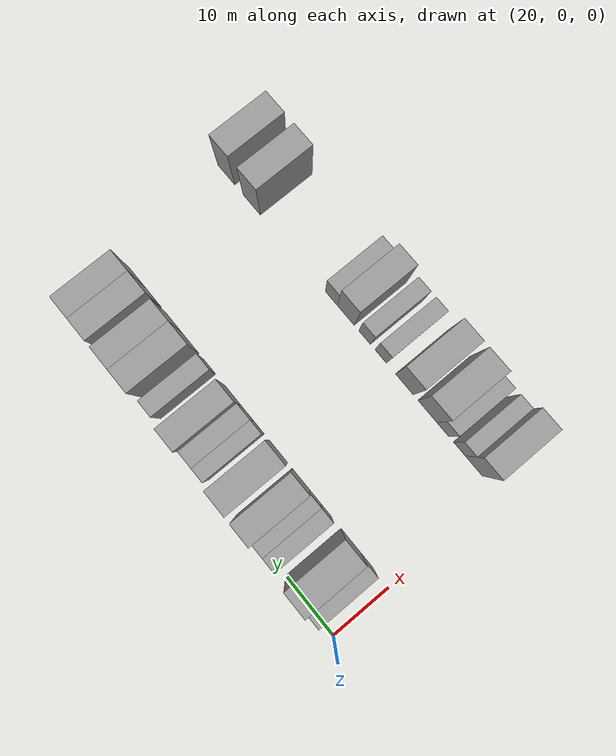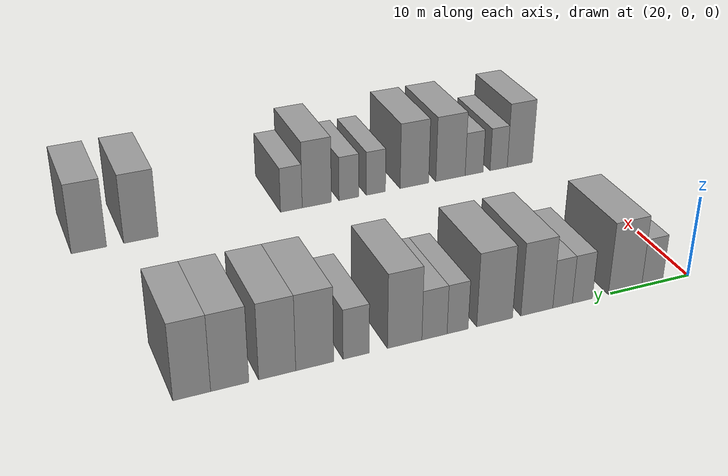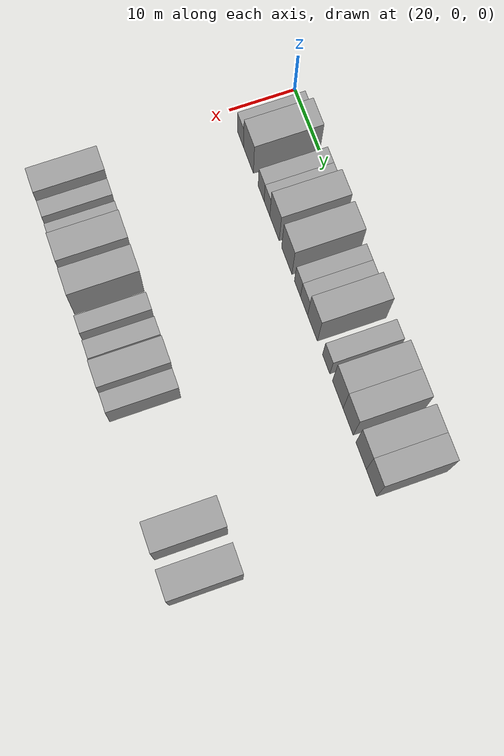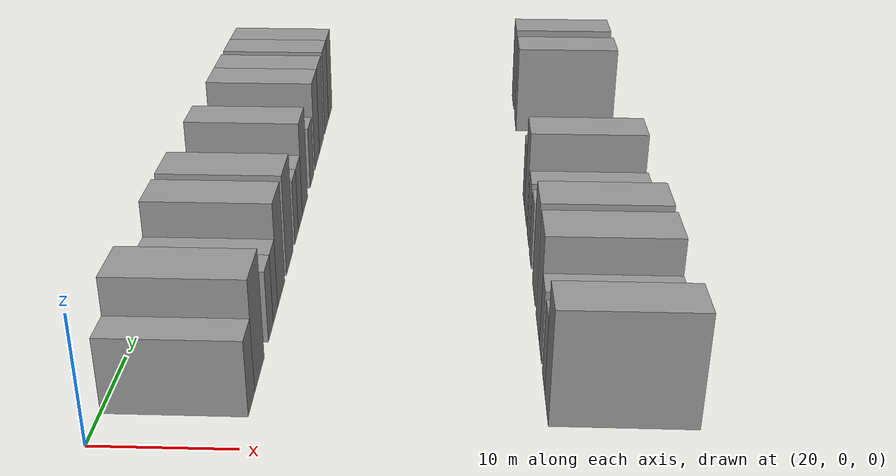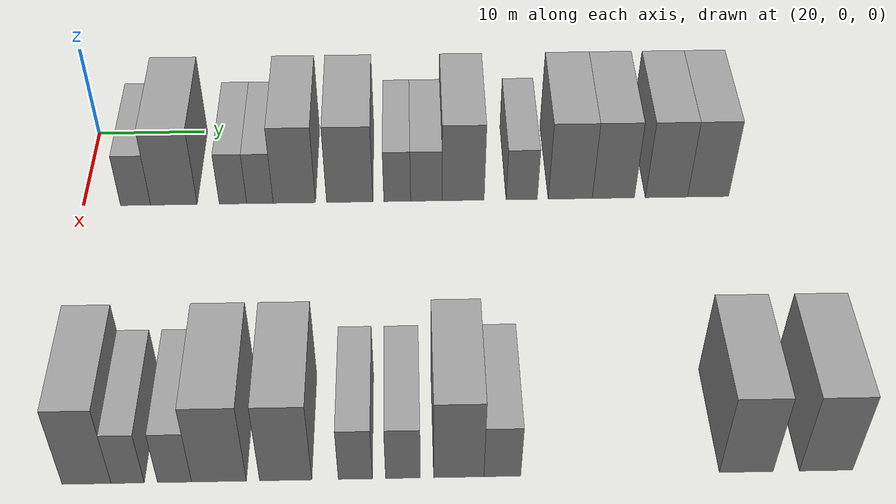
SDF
<sdf version="1.6">
 <world name="default">
  <model name="building_58">
   <static>1</static>
   <pose>25.0000 4.7348 0 0.000000 0.000000 0.000000</pose>
   <link name="link">
    <pose>0 0 3.00 0 0 0</pose>
    <collision name="collision"><geometry><box><size>10.0000 2.7110 6.0000</size></box></geometry></collision>
    <visual name="visual">
     <cast_shadows>0</cast_shadows>
     <geometry><box><size>10.0000 2.7110 6.0000</size></box></geometry>
     <material>
      <script>
       <uri>model://grey_wall/materials/scripts</uri>
       <uri>model://grey_wall/materials/textures</uri>
       <name>vrc/grey_wall</name>
      </script>
     </material>
    </visual>
   </link>
  </model>
  <model name="building_59">
   <static>1</static>
   <pose>25.0000 8.2013 0 0.000000 0.000000 0.000000</pose>
   <link name="link">
    <pose>0 0 4.50 0 0 0</pose>
    <collision name="collision"><geometry><box><size>10.0000 4.2220 9.0000</size></box></geometry></collision>
    <visual name="visual">
     <cast_shadows>0</cast_shadows>
     <geometry><box><size>10.0000 4.2220 9.0000</size></box></geometry>
     <material>
      <script>
       <uri>model://grey_wall/materials/scripts</uri>
       <uri>model://grey_wall/materials/textures</uri>
       <name>vrc/grey_wall</name>
      </script>
     </material>
    </visual>
   </link>
  </model>
  <model name="building_60">
   <static>1</static>
   <pose>25.0000 13.5528 0 0.000000 0.000000 0.000000</pose>
   <link name="link">
    <pose>0 0 3.00 0 0 0</pose>
    <collision name="collision"><geometry><box><size>10.0000 2.4810 6.0000</size></box></geometry></collision>
    <visual name="visual">
     <cast_shadows>0</cast_shadows>
     <geometry><box><size>10.0000 2.4810 6.0000</size></box></geometry>
     <material>
      <script>
       <uri>model://grey_wall/materials/scripts</uri>
       <uri>model://grey_wall/materials/textures</uri>
       <name>vrc/grey_wall</name>
      </script>
     </material>
    </visual>
   </link>
  </model>
  <model name="building_61">
   <static>1</static>
   <pose>25.0000 15.9937 0 0.000000 0.000000 0.000000</pose>
   <link name="link">
    <pose>0 0 3.00 0 0 0</pose>
    <collision name="collision"><geometry><box><size>10.0000 2.4008 6.0000</size></box></geometry></collision>
    <visual name="visual">
     <cast_shadows>0</cast_shadows>
     <geometry><box><size>10.0000 2.4008 6.0000</size></box></geometry>
     <material>
      <script>
       <uri>model://grey_wall/materials/scripts</uri>
       <uri>model://grey_wall/materials/textures</uri>
       <name>vrc/grey_wall</name>
      </script>
     </material>
    </visual>
   </link>
  </model>
  <model name="building_62">
   <static>1</static>
   <pose>25.0000 19.1128 0 0.000000 0.000000 0.000000</pose>
   <link name="link">
    <pose>0 0 4.50 0 0 0</pose>
    <collision name="collision"><geometry><box><size>10.0000 3.8374 9.0000</size></box></geometry></collision>
    <visual name="visual">
     <cast_shadows>0</cast_shadows>
     <geometry><box><size>10.0000 3.8374 9.0000</size></box></geometry>
     <material>
      <script>
       <uri>model://grey_wall/materials/scripts</uri>
       <uri>model://grey_wall/materials/textures</uri>
       <name>vrc/grey_wall</name>
      </script>
     </material>
    </visual>
   </link>
  </model>
  <model name="building_63">
   <static>1</static>
   <pose>25.0000 24.1351 0 0.000000 0.000000 0.000000</pose>
   <link name="link">
    <pose>0 0 4.50 0 0 0</pose>
    <collision name="collision"><geometry><box><size>10.0000 4.2073 9.0000</size></box></geometry></collision>
    <visual name="visual">
     <cast_shadows>0</cast_shadows>
     <geometry><box><size>10.0000 4.2073 9.0000</size></box></geometry>
     <material>
      <script>
       <uri>model://grey_wall/materials/scripts</uri>
       <uri>model://grey_wall/materials/textures</uri>
       <name>vrc/grey_wall</name>
      </script>
     </material>
    </visual>
   </link>
  </model>
  <model name="building_64">
   <static>1</static>
   <pose>25.0000 28.4493 0 0.000000 0.000000 0.000000</pose>
   <link name="link">
    <pose>0 0 3.00 0 0 0</pose>
    <collision name="collision"><geometry><box><size>10.0000 2.4211 6.0000</size></box></geometry></collision>
    <visual name="visual">
     <cast_shadows>0</cast_shadows>
     <geometry><box><size>10.0000 2.4211 6.0000</size></box></geometry>
     <material>
      <script>
       <uri>model://grey_wall/materials/scripts</uri>
       <uri>model://grey_wall/materials/textures</uri>
       <name>vrc/grey_wall</name>
      </script>
     </material>
    </visual>
   </link>
  </model>
  <model name="building_65">
   <static>1</static>
   <pose>25.0000 31.0867 0 0.000000 0.000000 0.000000</pose>
   <link name="link">
    <pose>0 0 3.00 0 0 0</pose>
    <collision name="collision"><geometry><box><size>10.0000 2.8536 6.0000</size></box></geometry></collision>
    <visual name="visual">
     <cast_shadows>0</cast_shadows>
     <geometry><box><size>10.0000 2.8536 6.0000</size></box></geometry>
     <material>
      <script>
       <uri>model://grey_wall/materials/scripts</uri>
       <uri>model://grey_wall/materials/textures</uri>
       <name>vrc/grey_wall</name>
      </script>
     </material>
    </visual>
   </link>
  </model>
  <model name="building_66">
   <static>1</static>
   <pose>25.0000 34.4329 0 0.000000 0.000000 0.000000</pose>
   <link name="link">
    <pose>0 0 4.50 0 0 0</pose>
    <collision name="collision"><geometry><box><size>10.0000 3.8389 9.0000</size></box></geometry></collision>
    <visual name="visual">
     <cast_shadows>0</cast_shadows>
     <geometry><box><size>10.0000 3.8389 9.0000</size></box></geometry>
     <material>
      <script>
       <uri>model://grey_wall/materials/scripts</uri>
       <uri>model://grey_wall/materials/textures</uri>
       <name>vrc/grey_wall</name>
      </script>
     </material>
    </visual>
   </link>
  </model>
  <model name="building_67">
   <static>1</static>
   <pose>25.0000 39.7731 0 0.000000 0.000000 0.000000</pose>
   <link name="link">
    <pose>0 0 3.00 0 0 0</pose>
    <collision name="collision"><geometry><box><size>10.0000 2.8414 6.0000</size></box></geometry></collision>
    <visual name="visual">
     <cast_shadows>0</cast_shadows>
     <geometry><box><size>10.0000 2.8414 6.0000</size></box></geometry>
     <material>
      <script>
       <uri>model://grey_wall/materials/scripts</uri>
       <uri>model://grey_wall/materials/textures</uri>
       <name>vrc/grey_wall</name>
      </script>
     </material>
    </visual>
   </link>
  </model>
  <model name="building_68">
   <static>1</static>
   <pose>25.0000 44.2026 0 0.000000 0.000000 0.000000</pose>
   <link name="link">
    <pose>0 0 4.50 0 0 0</pose>
    <collision name="collision"><geometry><box><size>10.0000 4.0176 9.0000</size></box></geometry></collision>
    <visual name="visual">
     <cast_shadows>0</cast_shadows>
     <geometry><box><size>10.0000 4.0176 9.0000</size></box></geometry>
     <material>
      <script>
       <uri>model://grey_wall/materials/scripts</uri>
       <uri>model://grey_wall/materials/textures</uri>
       <name>vrc/grey_wall</name>
      </script>
     </material>
    </visual>
   </link>
  </model>
  <model name="building_69">
   <static>1</static>
   <pose>25.0000 48.1351 0 0.000000 0.000000 0.000000</pose>
   <link name="link">
    <pose>0 0 4.50 0 0 0</pose>
    <collision name="collision"><geometry><box><size>10.0000 3.8475 9.0000</size></box></geometry></collision>
    <visual name="visual">
     <cast_shadows>0</cast_shadows>
     <geometry><box><size>10.0000 3.8475 9.0000</size></box></geometry>
     <material>
      <script>
       <uri>model://grey_wall/materials/scripts</uri>
       <uri>model://grey_wall/materials/textures</uri>
       <name>vrc/grey_wall</name>
      </script>
     </material>
    </visual>
   </link>
  </model>
  <model name="building_70">
   <static>1</static>
   <pose>25.0000 52.9887 0 0.000000 0.000000 0.000000</pose>
   <link name="link">
    <pose>0 0 4.50 0 0 0</pose>
    <collision name="collision"><geometry><box><size>10.0000 3.8597 9.0000</size></box></geometry></collision>
    <visual name="visual">
     <cast_shadows>0</cast_shadows>
     <geometry><box><size>10.0000 3.8597 9.0000</size></box></geometry>
     <material>
      <script>
       <uri>model://grey_wall/materials/scripts</uri>
       <uri>model://grey_wall/materials/textures</uri>
       <name>vrc/grey_wall</name>
      </script>
     </material>
    </visual>
   </link>
  </model>
  <model name="building_71">
   <static>1</static>
   <pose>25.0000 56.7970 0 0.000000 0.000000 0.000000</pose>
   <link name="link">
    <pose>0 0 4.50 0 0 0</pose>
    <collision name="collision"><geometry><box><size>10.0000 3.7568 9.0000</size></box></geometry></collision>
    <visual name="visual">
     <cast_shadows>0</cast_shadows>
     <geometry><box><size>10.0000 3.7568 9.0000</size></box></geometry>
     <material>
      <script>
       <uri>model://grey_wall/materials/scripts</uri>
       <uri>model://grey_wall/materials/textures</uri>
       <name>vrc/grey_wall</name>
      </script>
     </material>
    </visual>
   </link>
  </model>
  <model name="building_155">
   <static>1</static>
   <pose>55.0000 4.9570 0 0.000000 0.000000 0.000000</pose>
   <link name="link">
    <pose>0 0 4.50 0 0 0</pose>
    <collision name="collision"><geometry><box><size>10.0000 3.6729 9.0000</size></box></geometry></collision>
    <visual name="visual">
     <cast_shadows>0</cast_shadows>
     <geometry><box><size>10.0000 3.6729 9.0000</size></box></geometry>
     <material>
      <script>
       <uri>model://grey_wall/materials/scripts</uri>
       <uri>model://grey_wall/materials/textures</uri>
       <name>vrc/grey_wall</name>
      </script>
     </material>
    </visual>
   </link>
  </model>
  <model name="building_156">
   <static>1</static>
   <pose>55.0000 8.0390 0 0.000000 0.000000 0.000000</pose>
   <link name="link">
    <pose>0 0 3.00 0 0 0</pose>
    <collision name="collision"><geometry><box><size>10.0000 2.4911 6.0000</size></box></geometry></collision>
    <visual name="visual">
     <cast_shadows>0</cast_shadows>
     <geometry><box><size>10.0000 2.4911 6.0000</size></box></geometry>
     <material>
      <script>
       <uri>model://grey_wall/materials/scripts</uri>
       <uri>model://grey_wall/materials/textures</uri>
       <name>vrc/grey_wall</name>
      </script>
     </material>
    </visual>
   </link>
  </model>
  <model name="building_157">
   <static>1</static>
   <pose>55.0000 11.5645 0 0.000000 0.000000 0.000000</pose>
   <link name="link">
    <pose>0 0 3.00 0 0 0</pose>
    <collision name="collision"><geometry><box><size>10.0000 2.5598 6.0000</size></box></geometry></collision>
    <visual name="visual">
     <cast_shadows>0</cast_shadows>
     <geometry><box><size>10.0000 2.5598 6.0000</size></box></geometry>
     <material>
      <script>
       <uri>model://grey_wall/materials/scripts</uri>
       <uri>model://grey_wall/materials/textures</uri>
       <name>vrc/grey_wall</name>
      </script>
     </material>
    </visual>
   </link>
  </model>
  <model name="building_158">
   <static>1</static>
   <pose>55.0000 14.9063 0 0.000000 0.000000 0.000000</pose>
   <link name="link">
    <pose>0 0 4.50 0 0 0</pose>
    <collision name="collision"><geometry><box><size>10.0000 4.1238 9.0000</size></box></geometry></collision>
    <visual name="visual">
     <cast_shadows>0</cast_shadows>
     <geometry><box><size>10.0000 4.1238 9.0000</size></box></geometry>
     <material>
      <script>
       <uri>model://grey_wall/materials/scripts</uri>
       <uri>model://grey_wall/materials/textures</uri>
       <name>vrc/grey_wall</name>
      </script>
     </material>
    </visual>
   </link>
  </model>
  <model name="building_159">
   <static>1</static>
   <pose>55.0000 19.9339 0 0.000000 0.000000 0.000000</pose>
   <link name="link">
    <pose>0 0 4.50 0 0 0</pose>
    <collision name="collision"><geometry><box><size>10.0000 3.9313 9.0000</size></box></geometry></collision>
    <visual name="visual">
     <cast_shadows>0</cast_shadows>
     <geometry><box><size>10.0000 3.9313 9.0000</size></box></geometry>
     <material>
      <script>
       <uri>model://grey_wall/materials/scripts</uri>
       <uri>model://grey_wall/materials/textures</uri>
       <name>vrc/grey_wall</name>
      </script>
     </material>
    </visual>
   </link>
  </model>
  <model name="building_160">
   <static>1</static>
   <pose>55.0000 25.1853 0 0.000000 0.000000 0.000000</pose>
   <link name="link">
    <pose>0 0 3.00 0 0 0</pose>
    <collision name="collision"><geometry><box><size>10.0000 2.5716 6.0000</size></box></geometry></collision>
    <visual name="visual">
     <cast_shadows>0</cast_shadows>
     <geometry><box><size>10.0000 2.5716 6.0000</size></box></geometry>
     <material>
      <script>
       <uri>model://grey_wall/materials/scripts</uri>
       <uri>model://grey_wall/materials/textures</uri>
       <name>vrc/grey_wall</name>
      </script>
     </material>
    </visual>
   </link>
  </model>
  <model name="building_161">
   <static>1</static>
   <pose>55.0000 28.7860 0 0.000000 0.000000 0.000000</pose>
   <link name="link">
    <pose>0 0 3.00 0 0 0</pose>
    <collision name="collision"><geometry><box><size>10.0000 2.6298 6.0000</size></box></geometry></collision>
    <visual name="visual">
     <cast_shadows>0</cast_shadows>
     <geometry><box><size>10.0000 2.6298 6.0000</size></box></geometry>
     <material>
      <script>
       <uri>model://grey_wall/materials/scripts</uri>
       <uri>model://grey_wall/materials/textures</uri>
       <name>vrc/grey_wall</name>
      </script>
     </material>
    </visual>
   </link>
  </model>
  <model name="building_162">
   <static>1</static>
   <pose>55.0000 33.0011 0 0.000000 0.000000 0.000000</pose>
   <link name="link">
    <pose>0 0 4.50 0 0 0</pose>
    <collision name="collision"><geometry><box><size>10.0000 3.8003 9.0000</size></box></geometry></collision>
    <visual name="visual">
     <cast_shadows>0</cast_shadows>
     <geometry><box><size>10.0000 3.8003 9.0000</size></box></geometry>
     <material>
      <script>
       <uri>model://grey_wall/materials/scripts</uri>
       <uri>model://grey_wall/materials/textures</uri>
       <name>vrc/grey_wall</name>
      </script>
     </material>
    </visual>
   </link>
  </model>
  <model name="building_163">
   <static>1</static>
   <pose>55.0000 36.2949 0 0.000000 0.000000 0.000000</pose>
   <link name="link">
    <pose>0 0 3.00 0 0 0</pose>
    <collision name="collision"><geometry><box><size>10.0000 2.7872 6.0000</size></box></geometry></collision>
    <visual name="visual">
     <cast_shadows>0</cast_shadows>
     <geometry><box><size>10.0000 2.7872 6.0000</size></box></geometry>
     <material>
      <script>
       <uri>model://grey_wall/materials/scripts</uri>
       <uri>model://grey_wall/materials/textures</uri>
       <name>vrc/grey_wall</name>
      </script>
     </material>
    </visual>
   </link>
  </model>
  <model name="building_164">
   <static>1</static>
   <pose>55.0000 54.8237 0 0.000000 0.000000 0.000000</pose>
   <link name="link">
    <pose>0 0 4.50 0 0 0</pose>
    <collision name="collision"><geometry><box><size>10.0000 4.0901 9.0000</size></box></geometry></collision>
    <visual name="visual">
     <cast_shadows>0</cast_shadows>
     <geometry><box><size>10.0000 4.0901 9.0000</size></box></geometry>
     <material>
      <script>
       <uri>model://grey_wall/materials/scripts</uri>
       <uri>model://grey_wall/materials/textures</uri>
       <name>vrc/grey_wall</name>
      </script>
     </material>
    </visual>
   </link>
  </model>
  <model name="building_165">
   <static>1</static>
   <pose>55.0000 60.9041 0 0.000000 0.000000 0.000000</pose>
   <link name="link">
    <pose>0 0 4.50 0 0 0</pose>
    <collision name="collision"><geometry><box><size>10.0000 4.0707 9.0000</size></box></geometry></collision>
    <visual name="visual">
     <cast_shadows>0</cast_shadows>
     <geometry><box><size>10.0000 4.0707 9.0000</size></box></geometry>
     <material>
      <script>
       <uri>model://grey_wall/materials/scripts</uri>
       <uri>model://grey_wall/materials/textures</uri>
       <name>vrc/grey_wall</name>
      </script>
     </material>
    </visual>
   </link>
  </model>
 </world>
</sdf>
